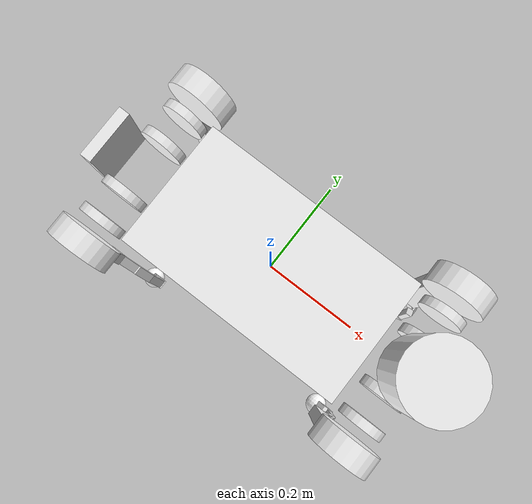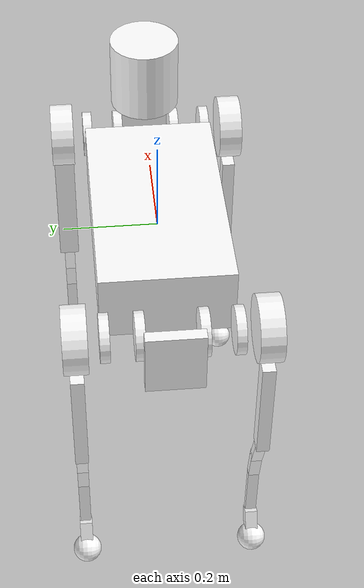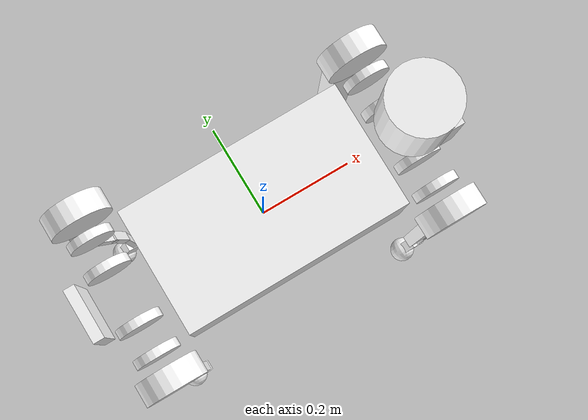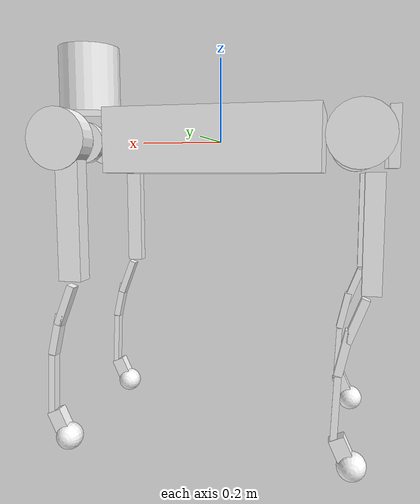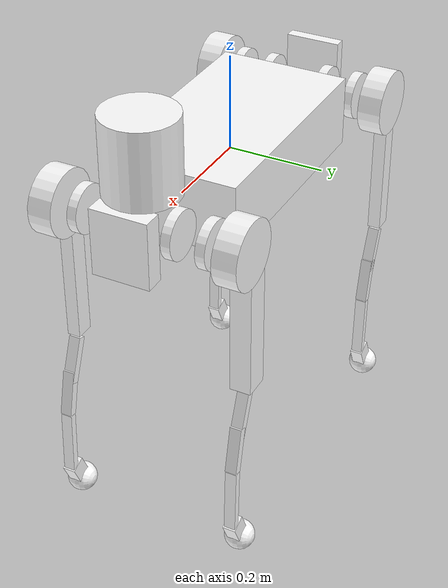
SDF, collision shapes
<sdf version='1.11'>
  <model name='b2_description'>
    <link name='base_link'>
      <inertial>
        <pose>0.023466809815318752 0.0045473199620229363 0.011407653769203359 0 0 0</pose>
        <mass>41.437100000004243</mass>
        <inertia>
          <ixx>0.35833829009318252</ixx>
          <ixy>0.0041202944041024607</ixy>
          <ixz>-0.13298807216337549</ixz>
          <iyy>1.7038134881267619</iyy>
          <iyz>0.00065768007788847638</iyz>
          <izz>1.762626433974269</izz>
        </inertia>
      </inertial>
      <collision name='base_link_collision'>
        <pose>0 0 0 0 0 0</pose>
        <geometry>
          <box>
            <size>0.5 0.28000000000000003 0.14999999999999999</size>
          </box>
        </geometry>
      </collision>
      <collision name='base_link_fixed_joint_lump__FL_hip_rotor_collision_1'>
        <pose>0.20205000000000001 0.071999999999999995 0 0 1.5707963267948966 0</pose>
        <geometry>
          <cylinder>
            <length>0.02</length>
            <radius>0.050000000000000003</radius>
          </cylinder>
        </geometry>
      </collision>
      <collision name='base_link_fixed_joint_lump__FR_hip_rotor_collision_2'>
        <pose>0.20205000000000001 -0.071999999999999995 0 0 1.5707963267948966 0</pose>
        <geometry>
          <cylinder>
            <length>0.02</length>
            <radius>0.050000000000000003</radius>
          </cylinder>
        </geometry>
      </collision>
      <collision name='base_link_fixed_joint_lump__RL_hip_rotor_collision_3'>
        <pose>-0.20205000000000001 0.071999999999999995 0 0 1.5707963267948966 0</pose>
        <geometry>
          <cylinder>
            <length>0.02</length>
            <radius>0.050000000000000003</radius>
          </cylinder>
        </geometry>
      </collision>
      <collision name='base_link_fixed_joint_lump__RR_hip_rotor_collision_4'>
        <pose>-0.20205000000000001 -0.071999999999999995 0 0 1.5707963267948966 0</pose>
        <geometry>
          <cylinder>
            <length>0.02</length>
            <radius>0.050000000000000003</radius>
          </cylinder>
        </geometry>
      </collision>
      <collision name='base_link_fixed_joint_lump__head_Link_collision_5'>
        <pose>0.40999999999999998 0 0.0050000000000000001 0 0 0</pose>
        <geometry>
          <box>
            <size>0.040000000000000001 0.12 0.14000000000000001</size>
          </box>
        </geometry>
      </collision>
      <collision name='base_link_fixed_joint_lump__lidar_link_collision_6'>
        <pose>0.34217999999999998 0 0.15851000000000001 0 0 0</pose>
        <geometry>
          <cylinder>
            <length>0.16</length>
            <radius>0.075999999999999998</radius>
          </cylinder>
        </geometry>
      </collision>
      <collision name='base_link_fixed_joint_lump__tail_link_collision_7'>
        <pose>-0.40500000000000003 0 0.0050000000000000001 0 0 0</pose>
        <geometry>
          <box>
            <size>0.025000000000000001 0.12 0.14000000000000001</size>
          </box>
        </geometry>
      </collision>
      <visual name='base_link_visual'>
        <pose>0 0 0 0 0 0</pose>
        <geometry>
          <mesh>
            <scale>1 1 1</scale>
            <uri>model://b2_description/meshes/base_link.dae</uri>
          </mesh>
        </geometry>
        <material>
          <diffuse>1 1 1 1</diffuse>
          <ambient>1 1 1 1</ambient>
        </material>
      </visual>
    </link>
    <joint name='FL_hip_joint' type='revolute'>
      <pose relative_to='base_link'>0.32850000000000001 0.071999999999999995 0 0 0 0</pose>
      <parent>base_link</parent>
      <child>FL_hip</child>
      <axis>
        <xyz>1 0 0</xyz>
        <limit>
          <lower>-0.87</lower>
          <upper>0.87</upper>
          <effort>200</effort>
          <velocity>23</velocity>
        </limit>
        <dynamics>
          <spring_reference>0</spring_reference>
          <spring_stiffness>0</spring_stiffness>
        </dynamics>
      </axis>
    </joint>
    <link name='FL_hip'>
      <pose relative_to='FL_hip_joint'>0 0 0 0 0 0</pose>
      <inertial>
        <pose>-0.0034845889899538418 -0.0089670431713277203 0 0 0 0</pose>
        <mass>2.9464000000000001</mass>
        <inertia>
          <ixx>0.0034635566050721092</ixx>
          <ixy>7.0563476946719513e-05</ixy>
          <ixz>-3.77e-07</ixz>
          <iyy>0.0050224222693452669</iyy>
          <iyz>4.0000000000000002e-09</iyz>
          <izz>0.0039757058744173748</izz>
        </inertia>
      </inertial>
      <collision name='FL_hip_collision'>
        <pose>0 0.12 0 1.5707963267948959 0 0</pose>
        <geometry>
          <cylinder>
            <length>0.050000000000000003</length>
            <radius>0.070000000000000007</radius>
          </cylinder>
        </geometry>
      </collision>
      <collision name='FL_hip_fixed_joint_lump__FL_thigh_rotor_collision_1'>
        <pose>0 -0.0079799999999999992 0 1.5707963267948959 0 0</pose>
        <geometry>
          <cylinder>
            <length>0.02</length>
            <radius>0.050000000000000003</radius>
          </cylinder>
        </geometry>
      </collision>
      <visual name='FL_hip_visual'>
        <pose>0 0 0 0 0 0</pose>
        <geometry>
          <mesh>
            <scale>1 1 1</scale>
            <uri>model://b2_description/meshes/FL_hip.dae</uri>
          </mesh>
        </geometry>
        <material>
          <diffuse>1 1 1 1</diffuse>
          <ambient>1 1 1 1</ambient>
        </material>
      </visual>
    </link>
    <joint name='FL_thigh_joint' type='revolute'>
      <pose relative_to='FL_hip'>0 0.11973 0 0 0 0</pose>
      <parent>FL_hip</parent>
      <child>FL_thigh</child>
      <axis>
        <xyz>0 1 0</xyz>
        <limit>
          <lower>-0.93999999999999995</lower>
          <upper>4.6900000000000004</upper>
          <effort>200</effort>
          <velocity>23</velocity>
        </limit>
        <dynamics>
          <spring_reference>0</spring_reference>
          <spring_stiffness>0</spring_stiffness>
        </dynamics>
      </axis>
    </joint>
    <link name='FL_thigh'>
      <pose relative_to='FL_thigh_joint'>0 0 0 0 0 0</pose>
      <inertial>
        <pose>-0.0059220576371272924 -0.033517415062169917 -0.054547253295629393 0 0 0</pose>
        <mass>4.8093999999999992</mass>
        <inertia>
          <ixx>0.063478022359096081</ixx>
          <ixy>0.00091963272820345531</ixy>
          <ixz>-0.0037411401024213869</ixz>
          <iyy>0.06241613529342966</iyy>
          <iyz>0.0087389233613070303</iyz>
          <izz>0.0086449726048936741</izz>
        </inertia>
      </inertial>
      <collision name='FL_thigh_collision'>
        <pose>-0.025000000000000001 0 -0.16 0 1.5707963267948966 0</pose>
        <geometry>
          <box>
            <size>0.32000000000000001 0.044499999999999998 0.053999999999999999</size>
          </box>
        </geometry>
      </collision>
      <collision name='FL_thigh_fixed_joint_lump__FL_calf_rotor_collision_1'>
        <pose>0 -0.057880000000000001 0 1.5707963267948959 0 0</pose>
        <geometry>
          <cylinder>
            <length>0.02</length>
            <radius>0.050000000000000003</radius>
          </cylinder>
        </geometry>
      </collision>
      <visual name='FL_thigh_visual'>
        <pose>0 0 0 0 0 0</pose>
        <geometry>
          <mesh>
            <scale>1 1 1</scale>
            <uri>model://b2_description/meshes/FL_thigh.dae</uri>
          </mesh>
        </geometry>
        <material>
          <diffuse>1 1 1 1</diffuse>
          <ambient>1 1 1 1</ambient>
        </material>
      </visual>
    </link>
    <joint name='FL_calf_joint' type='revolute'>
      <pose relative_to='FL_thigh'>0 -8.6984000000000006e-05 -0.34999999999999998 0 0 0</pose>
      <parent>FL_thigh</parent>
      <child>FL_calf</child>
      <axis>
        <xyz>0 1 0</xyz>
        <limit>
          <lower>-2.8199999999999998</lower>
          <upper>-0.42999999999999999</upper>
          <effort>320</effort>
          <velocity>14</velocity>
        </limit>
        <dynamics>
          <spring_reference>0</spring_reference>
          <spring_stiffness>0</spring_stiffness>
        </dynamics>
      </axis>
    </joint>
    <link name='FL_calf'>
      <pose relative_to='FL_calf_joint'>0 0 0 0 0 0</pose>
      <inertial>
        <pose>0.0079209471698113206 0 -0.1808945358490566 0 0 0</pose>
        <mass>0.53000000000000003</mass>
        <inertia>
          <ixx>0.016779054790111821</ixx>
          <ixy>0</ixy>
          <ixz>0.00022639000679900399</ixz>
          <iyy>0.016920483037138331</iyy>
          <iyz>0</iyz>
          <izz>0.00040742824702652081</izz>
        </inertia>
      </inertial>
      <collision name='FL_calf_collision'>
        <pose>-0.002 0 -0.029999999999999999 0 1.2000000000000002 0</pose>
        <geometry>
          <box>
            <size>0.10000000000000001 0.024500000000000001 0.017999999999999999</size>
          </box>
        </geometry>
      </collision>
      <collision name='FL_calf_collision_1'>
        <pose>0.021999999999999999 0 -0.10000000000000001 0 1.3500000000000001 0</pose>
        <geometry>
          <box>
            <size>0.10000000000000001 0.024500000000000001 0.017999999999999999</size>
          </box>
        </geometry>
      </collision>
      <collision name='FL_calf_collision_2'>
        <pose>0.035999999999999997 0 -0.22500000000000001 0 1.530000000000008 0</pose>
        <geometry>
          <box>
            <size>0.14999999999999999 0.024500000000000001 0.014999999999999999</size>
          </box>
        </geometry>
      </collision>
      <collision name='FL_calf_collision_3'>
        <pose>0.023 0 -0.31 3.1415926535897931 1.1415926535897938 3.1415926535897931</pose>
        <geometry>
          <box>
            <size>0.050000000000000003 0.028000000000000001 0.035000000000000003</size>
          </box>
        </geometry>
      </collision>
      <collision name='FL_calf_fixed_joint_lump__FL_foot_collision_4'>
        <pose>0 0 -0.34999999999999998 1.5700000000000001 0 0</pose>
        <geometry>
          <sphere>
            <radius>0.032000000000000001</radius>
          </sphere>
        </geometry>
      </collision>
      <visual name='FL_calf_visual'>
        <pose>0 0 0 0 0 0</pose>
        <geometry>
          <mesh>
            <scale>1 1 1</scale>
            <uri>model://b2_description/meshes/FL_calf.dae</uri>
          </mesh>
        </geometry>
        <material>
          <diffuse>1 1 1 1</diffuse>
          <ambient>1 1 1 1</ambient>
        </material>
      </visual>
    </link>
    <joint name='FR_hip_joint' type='revolute'>
      <pose relative_to='base_link'>0.32850000000000001 -0.071999999999999995 0 0 0 0</pose>
      <parent>base_link</parent>
      <child>FR_hip</child>
      <axis>
        <xyz>1 0 0</xyz>
        <limit>
          <lower>-0.87</lower>
          <upper>0.87</upper>
          <effort>200</effort>
          <velocity>23</velocity>
        </limit>
        <dynamics>
          <spring_reference>0</spring_reference>
          <spring_stiffness>0</spring_stiffness>
        </dynamics>
      </axis>
    </joint>
    <link name='FR_hip'>
      <pose relative_to='FR_hip_joint'>0 0 0 0 0 0</pose>
      <inertial>
        <pose>-0.0084415778577246799 0.010019405376052131 0.00023950312245452079 0 0 0</pose>
        <mass>2.9464000000000001</mass>
        <inertia>
          <ixx>0.0027888337118307902</ixx>
          <ixy>-0.00018715177923559319</ixy>
          <ixz>-6.1507071700162891e-06</ixz>
          <iyy>0.0048387555510901112</iyy>
          <iyz>7.0128006145294582e-06</iyz>
          <izz>0.0037065816893997578</izz>
        </inertia>
      </inertial>
      <collision name='FR_hip_collision'>
        <pose>0 -0.12 0 1.5707963267948959 0 0</pose>
        <geometry>
          <cylinder>
            <length>0.050000000000000003</length>
            <radius>0.070000000000000007</radius>
          </cylinder>
        </geometry>
      </collision>
      <collision name='FR_hip_fixed_joint_lump__FR_thigh_rotor_collision_1'>
        <pose>0 0.0079799999999999992 0 1.5707963267948959 0 0</pose>
        <geometry>
          <cylinder>
            <length>0.02</length>
            <radius>0.050000000000000003</radius>
          </cylinder>
        </geometry>
      </collision>
      <visual name='FR_hip_visual'>
        <pose>0 0 0 0 0 0</pose>
        <geometry>
          <mesh>
            <scale>1 1 1</scale>
            <uri>model://b2_description/meshes/FR_hip.dae</uri>
          </mesh>
        </geometry>
        <material>
          <diffuse>1 1 1 1</diffuse>
          <ambient>1 1 1 1</ambient>
        </material>
      </visual>
    </link>
    <joint name='FR_thigh_joint' type='revolute'>
      <pose relative_to='FR_hip'>0 -0.11973 0 0 0 0</pose>
      <parent>FR_hip</parent>
      <child>FR_thigh</child>
      <axis>
        <xyz>0 1 0</xyz>
        <limit>
          <lower>-0.93999999999999995</lower>
          <upper>4.6900000000000004</upper>
          <effort>200</effort>
          <velocity>23</velocity>
        </limit>
        <dynamics>
          <spring_reference>0</spring_reference>
          <spring_stiffness>0</spring_stiffness>
        </dynamics>
      </axis>
    </joint>
    <link name='FR_thigh'>
      <pose relative_to='FR_thigh_joint'>0 0 0 0 0 0</pose>
      <inertial>
        <pose>-0.0059220576371272924 0.033517415062169917 -0.054547253295629393 0 0 0</pose>
        <mass>4.8093999999999992</mass>
        <inertia>
          <ixx>0.063478102359096081</ixx>
          <ixy>-0.00091963072820345527</ixy>
          <ixz>-0.0037411041024213872</ixz>
          <iyy>0.062416405293429657</iyy>
          <iyz>-0.00873889436130703</iyz>
          <izz>0.0086450176048936747</izz>
        </inertia>
      </inertial>
      <collision name='FR_thigh_collision'>
        <pose>-0.029999999999999999 0 -0.20000000000000001 0 1.5707963267948966 0</pose>
        <geometry>
          <box>
            <size>0.25 0.028000000000000001 0.040000000000000001</size>
          </box>
        </geometry>
      </collision>
      <collision name='FR_thigh_fixed_joint_lump__FR_calf_rotor_collision_1'>
        <pose>0 0.057880000000000001 0 1.5707963267948959 0 0</pose>
        <geometry>
          <cylinder>
            <length>0.02</length>
            <radius>0.050000000000000003</radius>
          </cylinder>
        </geometry>
      </collision>
      <visual name='FR_thigh_visual'>
        <pose>0 0 0 0 0 0</pose>
        <geometry>
          <mesh>
            <scale>1 1 1</scale>
            <uri>model://b2_description/meshes/FR_thigh.dae</uri>
          </mesh>
        </geometry>
        <material>
          <diffuse>1 1 1 1</diffuse>
          <ambient>1 1 1 1</ambient>
        </material>
      </visual>
    </link>
    <joint name='FR_calf_joint' type='revolute'>
      <pose relative_to='FR_thigh'>0 8.6985999999999997e-05 -0.34999999999999998 0 0 0</pose>
      <parent>FR_thigh</parent>
      <child>FR_calf</child>
      <axis>
        <xyz>0 1 0</xyz>
        <limit>
          <lower>-2.8199999999999998</lower>
          <upper>-0.42999999999999999</upper>
          <effort>320</effort>
          <velocity>14</velocity>
        </limit>
        <dynamics>
          <spring_reference>0</spring_reference>
          <spring_stiffness>0</spring_stiffness>
        </dynamics>
      </axis>
    </joint>
    <link name='FR_calf'>
      <pose relative_to='FR_calf_joint'>0 0 0 0 0 0</pose>
      <inertial>
        <pose>0.0079209471698113206 0 -0.1808945358490566 0 0 0</pose>
        <mass>0.53000000000000003</mass>
        <inertia>
          <ixx>0.016779054790111821</ixx>
          <ixy>0</ixy>
          <ixz>0.00022639000679900399</ixz>
          <iyy>0.016920483037138331</iyy>
          <iyz>0</iyz>
          <izz>0.00040742824702652081</izz>
        </inertia>
      </inertial>
      <collision name='FR_calf_collision'>
        <pose>-0.002 0 -0.029999999999999999 0 1.2000000000000002 0</pose>
        <geometry>
          <box>
            <size>0.10000000000000001 0.024500000000000001 0.017999999999999999</size>
          </box>
        </geometry>
      </collision>
      <collision name='FR_calf_collision_1'>
        <pose>0.021999999999999999 0 -0.10000000000000001 0 1.3500000000000001 0</pose>
        <geometry>
          <box>
            <size>0.10000000000000001 0.024500000000000001 0.017999999999999999</size>
          </box>
        </geometry>
      </collision>
      <collision name='FR_calf_collision_2'>
        <pose>0.035999999999999997 0 -0.22500000000000001 0 1.530000000000008 0</pose>
        <geometry>
          <box>
            <size>0.14999999999999999 0.024500000000000001 0.014999999999999999</size>
          </box>
        </geometry>
      </collision>
      <collision name='FR_calf_collision_3'>
        <pose>0.023 0 -0.31 3.1415926535897931 1.1415926535897938 3.1415926535897931</pose>
        <geometry>
          <box>
            <size>0.050000000000000003 0.028000000000000001 0.035000000000000003</size>
          </box>
        </geometry>
      </collision>
      <collision name='FR_calf_fixed_joint_lump__FR_foot_collision_4'>
        <pose>0 0 -0.34999999999999998 1.5700000000000001 0 0</pose>
        <geometry>
          <sphere>
            <radius>0.032000000000000001</radius>
          </sphere>
        </geometry>
      </collision>
      <visual name='FR_calf_visual'>
        <pose>0 0 0 0 0 0</pose>
        <geometry>
          <mesh>
            <scale>1 1 1</scale>
            <uri>model://b2_description/meshes/FR_calf.dae</uri>
          </mesh>
        </geometry>
        <material>
          <diffuse>1 1 1 1</diffuse>
          <ambient>1 1 1 1</ambient>
        </material>
      </visual>
    </link>
    <joint name='RL_hip_joint' type='revolute'>
      <pose relative_to='base_link'>-0.32850000000000001 0.071999999999999995 0 0 0 0</pose>
      <parent>base_link</parent>
      <child>RL_hip</child>
      <axis>
        <xyz>1 0 0</xyz>
        <limit>
          <lower>-0.87</lower>
          <upper>0.87</upper>
          <effort>200</effort>
          <velocity>23</velocity>
        </limit>
        <dynamics>
          <spring_reference>0</spring_reference>
          <spring_stiffness>0</spring_stiffness>
        </dynamics>
      </axis>
    </joint>
    <link name='RL_hip'>
      <pose relative_to='RL_hip_joint'>0 0 0 0 0 0</pose>
      <inertial>
        <pose>0.0084415778577246799 -0.010019405376052131 0.00023950312245452079 0 0 0</pose>
        <mass>2.9464000000000001</mass>
        <inertia>
          <ixx>0.0027888337118307902</ixx>
          <ixy>-0.00018715177923559319</ixy>
          <ixz>6.1507071700162891e-06</ixz>
          <iyy>0.0048387555510901112</iyy>
          <iyz>-7.0128006145294582e-06</iyz>
          <izz>0.0037065816893997578</izz>
        </inertia>
      </inertial>
      <collision name='RL_hip_collision'>
        <pose>0 0.12 0 1.5707963267948959 0 0</pose>
        <geometry>
          <cylinder>
            <length>0.050000000000000003</length>
            <radius>0.070000000000000007</radius>
          </cylinder>
        </geometry>
      </collision>
      <collision name='RL_hip_fixed_joint_lump__RL_thigh_rotor_collision_1'>
        <pose>0 -0.0079799999999999992 0 1.5707963267948959 0 0</pose>
        <geometry>
          <cylinder>
            <length>0.02</length>
            <radius>0.050000000000000003</radius>
          </cylinder>
        </geometry>
      </collision>
      <visual name='RL_hip_visual'>
        <pose>0 0 0 0 0 0</pose>
        <geometry>
          <mesh>
            <scale>1 1 1</scale>
            <uri>model://b2_description/meshes/RL_hip.dae</uri>
          </mesh>
        </geometry>
        <material>
          <diffuse>1 1 1 1</diffuse>
          <ambient>1 1 1 1</ambient>
        </material>
      </visual>
    </link>
    <joint name='RL_thigh_joint' type='revolute'>
      <pose relative_to='RL_hip'>0 0.11973 0 0 0 0</pose>
      <parent>RL_hip</parent>
      <child>RL_thigh</child>
      <axis>
        <xyz>0 1 0</xyz>
        <limit>
          <lower>-0.93999999999999995</lower>
          <upper>4.6900000000000004</upper>
          <effort>200</effort>
          <velocity>23</velocity>
        </limit>
        <dynamics>
          <spring_reference>0</spring_reference>
          <spring_stiffness>0</spring_stiffness>
        </dynamics>
      </axis>
    </joint>
    <link name='RL_thigh'>
      <pose relative_to='RL_thigh_joint'>0 0 0 0 0 0</pose>
      <inertial>
        <pose>-0.0059220576371272924 -0.033517415062169917 -0.054547253295629393 0 0 0</pose>
        <mass>4.8093999999999992</mass>
        <inertia>
          <ixx>0.063478102359096081</ixx>
          <ixy>0.00091963072820345527</ixy>
          <ixz>-0.0037411041024213872</ixz>
          <iyy>0.062416405293429657</iyy>
          <iyz>0.00873889436130703</iyz>
          <izz>0.0086450176048936747</izz>
        </inertia>
      </inertial>
      <collision name='RL_thigh_collision'>
        <pose>-0.029999999999999999 0 -0.20000000000000001 0 1.5707963267948966 0</pose>
        <geometry>
          <box>
            <size>0.25 0.028000000000000001 0.040000000000000001</size>
          </box>
        </geometry>
      </collision>
      <collision name='RL_thigh_fixed_joint_lump__RL_calf_rotor_collision_1'>
        <pose>0 -0.057880000000000001 0 1.5707963267948959 0 0</pose>
        <geometry>
          <cylinder>
            <length>0.02</length>
            <radius>0.050000000000000003</radius>
          </cylinder>
        </geometry>
      </collision>
      <visual name='RL_thigh_visual'>
        <pose>0 0 0 0 0 0</pose>
        <geometry>
          <mesh>
            <scale>1 1 1</scale>
            <uri>model://b2_description/meshes/RL_thigh.dae</uri>
          </mesh>
        </geometry>
        <material>
          <diffuse>1 1 1 1</diffuse>
          <ambient>1 1 1 1</ambient>
        </material>
      </visual>
    </link>
    <joint name='RL_calf_joint' type='revolute'>
      <pose relative_to='RL_thigh'>0 -8.6984000000000006e-05 -0.34999999999999998 0 0 0</pose>
      <parent>RL_thigh</parent>
      <child>RL_calf</child>
      <axis>
        <xyz>0 1 0</xyz>
        <limit>
          <lower>-2.8199999999999998</lower>
          <upper>-0.42999999999999999</upper>
          <effort>320</effort>
          <velocity>14</velocity>
        </limit>
        <dynamics>
          <spring_reference>0</spring_reference>
          <spring_stiffness>0</spring_stiffness>
        </dynamics>
      </axis>
    </joint>
    <link name='RL_calf'>
      <pose relative_to='RL_calf_joint'>0 0 0 0 0 0</pose>
      <inertial>
        <pose>0.0079209471698113206 0 -0.1808945358490566 0 0 0</pose>
        <mass>0.53000000000000003</mass>
        <inertia>
          <ixx>0.016779054790111821</ixx>
          <ixy>0</ixy>
          <ixz>0.00022639000679900399</ixz>
          <iyy>0.016920483037138331</iyy>
          <iyz>0</iyz>
          <izz>0.00040742824702652081</izz>
        </inertia>
      </inertial>
      <collision name='RL_calf_collision'>
        <pose>-0.002 0 -0.029999999999999999 0 1.2000000000000002 0</pose>
        <geometry>
          <box>
            <size>0.10000000000000001 0.024500000000000001 0.017999999999999999</size>
          </box>
        </geometry>
      </collision>
      <collision name='RL_calf_collision_1'>
        <pose>0.021999999999999999 0 -0.10000000000000001 0 1.3500000000000001 0</pose>
        <geometry>
          <box>
            <size>0.10000000000000001 0.024500000000000001 0.017999999999999999</size>
          </box>
        </geometry>
      </collision>
      <collision name='RL_calf_collision_2'>
        <pose>0.035999999999999997 0 -0.22500000000000001 0 1.530000000000008 0</pose>
        <geometry>
          <box>
            <size>0.14999999999999999 0.024500000000000001 0.014999999999999999</size>
          </box>
        </geometry>
      </collision>
      <collision name='RL_calf_collision_3'>
        <pose>0.023 0 -0.31 3.1415926535897931 1.1415926535897938 3.1415926535897931</pose>
        <geometry>
          <box>
            <size>0.050000000000000003 0.028000000000000001 0.035000000000000003</size>
          </box>
        </geometry>
      </collision>
      <collision name='RL_calf_fixed_joint_lump__RL_foot_collision_4'>
        <pose>0 0 -0.34999999999999998 1.5700000000000001 0 0</pose>
        <geometry>
          <sphere>
            <radius>0.032000000000000001</radius>
          </sphere>
        </geometry>
      </collision>
      <visual name='RL_calf_visual'>
        <pose>0 0 0 0 0 0</pose>
        <geometry>
          <mesh>
            <scale>1 1 1</scale>
            <uri>model://b2_description/meshes/RL_calf.dae</uri>
          </mesh>
        </geometry>
        <material>
          <diffuse>1 1 1 1</diffuse>
          <ambient>1 1 1 1</ambient>
        </material>
      </visual>
    </link>
    <joint name='RR_hip_joint' type='revolute'>
      <pose relative_to='base_link'>-0.32850000000000001 -0.071999999999999995 0 0 0 0</pose>
      <parent>base_link</parent>
      <child>RR_hip</child>
      <axis>
        <xyz>1 0 0</xyz>
        <limit>
          <lower>-0.87</lower>
          <upper>0.87</upper>
          <effort>200</effort>
          <velocity>23</velocity>
        </limit>
        <dynamics>
          <spring_reference>0</spring_reference>
          <spring_stiffness>0</spring_stiffness>
        </dynamics>
      </axis>
    </joint>
    <link name='RR_hip'>
      <pose relative_to='RR_hip_joint'>0 0 0 0 0 0</pose>
      <inertial>
        <pose>0.0034845889899538418 0.0089670431713277203 0 0 0 0</pose>
        <mass>2.9464000000000001</mass>
        <inertia>
          <ixx>0.0034635566050721092</ixx>
          <ixy>7.0563476946719513e-05</ixy>
          <ixz>3.77e-07</ixz>
          <iyy>0.0050224222693452669</iyy>
          <iyz>-4.0000000000000002e-09</iyz>
          <izz>0.0039757058744173748</izz>
        </inertia>
      </inertial>
      <collision name='RR_hip_collision'>
        <pose>0 -0.12 0 1.5707963267948959 0 0</pose>
        <geometry>
          <cylinder>
            <length>0.050000000000000003</length>
            <radius>0.070000000000000007</radius>
          </cylinder>
        </geometry>
      </collision>
      <collision name='RR_hip_fixed_joint_lump__RR_thigh_rotor_collision_1'>
        <pose>0 0.0079799999999999992 0 1.5707963267948959 0 0</pose>
        <geometry>
          <cylinder>
            <length>0.02</length>
            <radius>0.050000000000000003</radius>
          </cylinder>
        </geometry>
      </collision>
      <visual name='RR_hip_visual'>
        <pose>0 0 0 0 0 0</pose>
        <geometry>
          <mesh>
            <scale>1 1 1</scale>
            <uri>model://b2_description/meshes/RR_hip.dae</uri>
          </mesh>
        </geometry>
        <material>
          <diffuse>1 1 1 1</diffuse>
          <ambient>1 1 1 1</ambient>
        </material>
      </visual>
    </link>
    <joint name='RR_thigh_joint' type='revolute'>
      <pose relative_to='RR_hip'>0 -0.11973 0 0 0 0</pose>
      <parent>RR_hip</parent>
      <child>RR_thigh</child>
      <axis>
        <xyz>0 1 0</xyz>
        <limit>
          <lower>-0.93999999999999995</lower>
          <upper>4.6900000000000004</upper>
          <effort>200</effort>
          <velocity>23</velocity>
        </limit>
        <dynamics>
          <spring_reference>0</spring_reference>
          <spring_stiffness>0</spring_stiffness>
        </dynamics>
      </axis>
    </joint>
    <link name='RR_thigh'>
      <pose relative_to='RR_thigh_joint'>0 0 0 0 0 0</pose>
      <inertial>
        <pose>-0.0059220576371272924 0.033517415062169917 -0.054547253295629393 0 0 0</pose>
        <mass>4.8093999999999992</mass>
        <inertia>
          <ixx>0.063478022359096081</ixx>
          <ixy>-0.00091963272820345531</ixy>
          <ixz>-0.0037411401024213869</ixz>
          <iyy>0.06241613529342966</iyy>
          <iyz>-0.0087389233613070303</iyz>
          <izz>0.0086449726048936741</izz>
        </inertia>
      </inertial>
      <collision name='RR_thigh_collision'>
        <pose>-0.029999999999999999 0 -0.20000000000000001 0 1.5707963267948966 0</pose>
        <geometry>
          <box>
            <size>0.25 0.028000000000000001 0.040000000000000001</size>
          </box>
        </geometry>
      </collision>
      <collision name='RR_thigh_fixed_joint_lump__RR_calf_rotor_collision_1'>
        <pose>0 0.057880000000000001 0 1.5707963267948959 0 0</pose>
        <geometry>
          <cylinder>
            <length>0.02</length>
            <radius>0.050000000000000003</radius>
          </cylinder>
        </geometry>
      </collision>
      <visual name='RR_thigh_visual'>
        <pose>0 0 0 0 0 0</pose>
        <geometry>
          <mesh>
            <scale>1 1 1</scale>
            <uri>model://b2_description/meshes/RR_thigh.dae</uri>
          </mesh>
        </geometry>
        <material>
          <diffuse>1 1 1 1</diffuse>
          <ambient>1 1 1 1</ambient>
        </material>
      </visual>
    </link>
    <joint name='RR_calf_joint' type='revolute'>
      <pose relative_to='RR_thigh'>0 8.6985999999999997e-05 -0.34999999999999998 0 0 0</pose>
      <parent>RR_thigh</parent>
      <child>RR_calf</child>
      <axis>
        <xyz>0 1 0</xyz>
        <limit>
          <lower>-2.8199999999999998</lower>
          <upper>-0.42999999999999999</upper>
          <effort>320</effort>
          <velocity>14</velocity>
        </limit>
        <dynamics>
          <spring_reference>0</spring_reference>
          <spring_stiffness>0</spring_stiffness>
        </dynamics>
      </axis>
    </joint>
    <link name='RR_calf'>
      <pose relative_to='RR_calf_joint'>0 0 0 0 0 0</pose>
      <inertial>
        <pose>0.0079209471698113206 -2.067921509433962e-05 -0.1808945358490566 0 0 0</pose>
        <mass>0.53000000000000003</mass>
        <inertia>
          <ixx>0.016779055516811199</ixx>
          <ixy>-1.581739100699774e-07</ixy>
          <ixz>0.00022639000679900399</ixz>
          <iyy>0.016920483037138331</iyy>
          <iyz>-1.9645712591029122e-06</iyz>
          <izz>0.00040742897372590252</izz>
        </inertia>
      </inertial>
      <collision name='RR_calf_collision'>
        <pose>-0.002 0 -0.029999999999999999 0 1.2000000000000002 0</pose>
        <geometry>
          <box>
            <size>0.10000000000000001 0.024500000000000001 0.017999999999999999</size>
          </box>
        </geometry>
      </collision>
      <collision name='RR_calf_collision_1'>
        <pose>0.021999999999999999 0 -0.10000000000000001 0 1.3500000000000001 0</pose>
        <geometry>
          <box>
            <size>0.10000000000000001 0.024500000000000001 0.017999999999999999</size>
          </box>
        </geometry>
      </collision>
      <collision name='RR_calf_collision_2'>
        <pose>0.035999999999999997 0 -0.22500000000000001 0 1.530000000000008 0</pose>
        <geometry>
          <box>
            <size>0.14999999999999999 0.024500000000000001 0.014999999999999999</size>
          </box>
        </geometry>
      </collision>
      <collision name='RR_calf_collision_3'>
        <pose>0.023 0 -0.31 3.1415926535897931 1.1415926535897938 3.1415926535897931</pose>
        <geometry>
          <box>
            <size>0.050000000000000003 0.028000000000000001 0.035000000000000003</size>
          </box>
        </geometry>
      </collision>
      <collision name='RR_calf_fixed_joint_lump__RR_foot_collision_4'>
        <pose>0 -8.6984000000000006e-05 -0.34999999999999998 1.5700000000000001 0 0</pose>
        <geometry>
          <sphere>
            <radius>0.032000000000000001</radius>
          </sphere>
        </geometry>
      </collision>
      <visual name='RR_calf_visual'>
        <pose>0 0 0 0 0 0</pose>
        <geometry>
          <mesh>
            <scale>1 1 1</scale>
            <uri>model://b2_description/meshes/RR_calf.dae</uri>
          </mesh>
        </geometry>
        <material>
          <diffuse>1 1 1 1</diffuse>
          <ambient>1 1 1 1</ambient>
        </material>
      </visual>
    </link>
    <frame name='FL_hip_rotor_joint' attached_to='base_link'>
      <pose>0.20205000000000001 0.071999999999999995 0 0 0 0</pose>
    </frame>
    <frame name='FL_hip_rotor' attached_to='FL_hip_rotor_joint'>
      <pose>0 0 0 0 0 0</pose>
    </frame>
    <frame name='FR_hip_rotor_joint' attached_to='base_link'>
      <pose>0.20205000000000001 -0.071999999999999995 0 0 0 0</pose>
    </frame>
    <frame name='FR_hip_rotor' attached_to='FR_hip_rotor_joint'>
      <pose>0 0 0 0 0 0</pose>
    </frame>
    <frame name='RL_hip_rotor_joint' attached_to='base_link'>
      <pose>-0.20205000000000001 0.071999999999999995 0 0 0 0</pose>
    </frame>
    <frame name='RL_hip_rotor' attached_to='RL_hip_rotor_joint'>
      <pose>0 0 0 0 0 0</pose>
    </frame>
    <frame name='RR_hip_rotor_joint' attached_to='base_link'>
      <pose>-0.20205000000000001 -0.071999999999999995 0 0 0 0</pose>
    </frame>
    <frame name='RR_hip_rotor' attached_to='RR_hip_rotor_joint'>
      <pose>0 0 0 0 0 0</pose>
    </frame>
    <frame name='joint_f_dc' attached_to='base_link'>
      <pose>0.41250999999999999 0.024996999999999998 0.047649999999999998 -2.3561999999999999 0 -1.5708</pose>
    </frame>
    <frame name='f_dc_link' attached_to='joint_f_dc'>
      <pose>0 0 0 0 0 0</pose>
    </frame>
    <frame name='joint_f_oc' attached_to='base_link'>
      <pose>0.39079000000000003 0 -0.013433 -1.5708 -5.5511151231257827e-17 -1.5708</pose>
    </frame>
    <frame name='f_oc_link' attached_to='joint_f_oc'>
      <pose>0 0 0 0 0 0</pose>
    </frame>
    <frame name='joint_head' attached_to='base_link'>
      <pose>0 0 0 0 0 0</pose>
    </frame>
    <frame name='head_Link' attached_to='joint_head'>
      <pose>0 0 0 0 0 0</pose>
    </frame>
    <frame name='joint_imu' attached_to='base_link'>
      <pose>0 -0.02341 0.049270000000000001 0 0 0</pose>
    </frame>
    <frame name='imu_link' attached_to='joint_imu'>
      <pose>0 0 0 0 0 0</pose>
    </frame>
    <frame name='joint_lidar' attached_to='base_link'>
      <pose>0.34217999999999998 0 0.17851 0 0 0</pose>
    </frame>
    <frame name='lidar_link' attached_to='joint_lidar'>
      <pose>0 0 0 0 0 0</pose>
    </frame>
    <frame name='joint_r_dc' attached_to='base_link'>
      <pose>-0.40810000000000002 -0.025000000000000001 0.024861000000000001 -2.3557000000000001 0 1.5708</pose>
    </frame>
    <frame name='r_dc_link' attached_to='joint_r_dc'>
      <pose>0 0 0 0 0 0</pose>
    </frame>
    <frame name='joint_r_oc' attached_to='base_link'>
      <pose>-0.38451000000000002 0 -0.023248999999999999 -1.5708 5.5511151231257827e-17 1.5708</pose>
    </frame>
    <frame name='r_oc_link' attached_to='joint_r_oc'>
      <pose>0 0 0 0 0 0</pose>
    </frame>
    <frame name='joint_tail' attached_to='base_link'>
      <pose>0 0 0 0 0 0</pose>
    </frame>
    <frame name='tail_link' attached_to='joint_tail'>
      <pose>0 0 0 0 0 0</pose>
    </frame>
    <frame name='FL_thigh_rotor_joint' attached_to='FL_hip'>
      <pose>0 -0.0079799999999999992 0 0 0 0</pose>
    </frame>
    <frame name='FL_thigh_rotor' attached_to='FL_thigh_rotor_joint'>
      <pose>0 0 0 0 0 0</pose>
    </frame>
    <frame name='FL_calf_rotor_joint' attached_to='FL_thigh'>
      <pose>0 -0.057880000000000001 0 0 0 0</pose>
    </frame>
    <frame name='FL_calf_rotor' attached_to='FL_calf_rotor_joint'>
      <pose>0 0 0 0 0 0</pose>
    </frame>
    <frame name='FL_foot_joint' attached_to='FL_calf'>
      <pose>0 0 -0.34999999999999998 0 0 0</pose>
    </frame>
    <frame name='FL_foot' attached_to='FL_foot_joint'>
      <pose>0 0 0 0 0 0</pose>
    </frame>
    <frame name='FR_thigh_rotor_joint' attached_to='FR_hip'>
      <pose>0 0.0079799999999999992 0 0 0 0</pose>
    </frame>
    <frame name='FR_thigh_rotor' attached_to='FR_thigh_rotor_joint'>
      <pose>0 0 0 0 0 0</pose>
    </frame>
    <frame name='FR_calf_rotor_joint' attached_to='FR_thigh'>
      <pose>0 0.057880000000000001 0 0 0 0</pose>
    </frame>
    <frame name='FR_calf_rotor' attached_to='FR_calf_rotor_joint'>
      <pose>0 0 0 0 0 0</pose>
    </frame>
    <frame name='FR_foot_joint' attached_to='FR_calf'>
      <pose>0 0 -0.34999999999999998 0 0 0</pose>
    </frame>
    <frame name='FR_foot' attached_to='FR_foot_joint'>
      <pose>0 0 0 0 0 0</pose>
    </frame>
    <frame name='RL_thigh_rotor_joint' attached_to='RL_hip'>
      <pose>0 -0.0079799999999999992 0 0 0 0</pose>
    </frame>
    <frame name='RL_thigh_rotor' attached_to='RL_thigh_rotor_joint'>
      <pose>0 0 0 0 0 0</pose>
    </frame>
    <frame name='RL_calf_rotor_joint' attached_to='RL_thigh'>
      <pose>0 -0.057880000000000001 0 0 0 0</pose>
    </frame>
    <frame name='RL_calf_rotor' attached_to='RL_calf_rotor_joint'>
      <pose>0 0 0 0 0 0</pose>
    </frame>
    <frame name='RL_foot_joint' attached_to='RL_calf'>
      <pose>0 0 -0.34999999999999998 0 0 0</pose>
    </frame>
    <frame name='RL_foot' attached_to='RL_foot_joint'>
      <pose>0 0 0 0 0 0</pose>
    </frame>
    <frame name='RR_thigh_rotor_joint' attached_to='RR_hip'>
      <pose>0 0.0079799999999999992 0 0 0 0</pose>
    </frame>
    <frame name='RR_thigh_rotor' attached_to='RR_thigh_rotor_joint'>
      <pose>0 0 0 0 0 0</pose>
    </frame>
    <frame name='RR_calf_rotor_joint' attached_to='RR_thigh'>
      <pose>0 0.057880000000000001 0 0 0 0</pose>
    </frame>
    <frame name='RR_calf_rotor' attached_to='RR_calf_rotor_joint'>
      <pose>0 0 0 0 0 0</pose>
    </frame>
    <frame name='RR_foot_joint' attached_to='RR_calf'>
      <pose>0 -8.6984000000000006e-05 -0.34999999999999998 0 0 0</pose>
    </frame>
    <frame name='RR_foot' attached_to='RR_foot_joint'>
      <pose>0 0 0 0 0 0</pose>
    </frame>
  </model>
</sdf>
